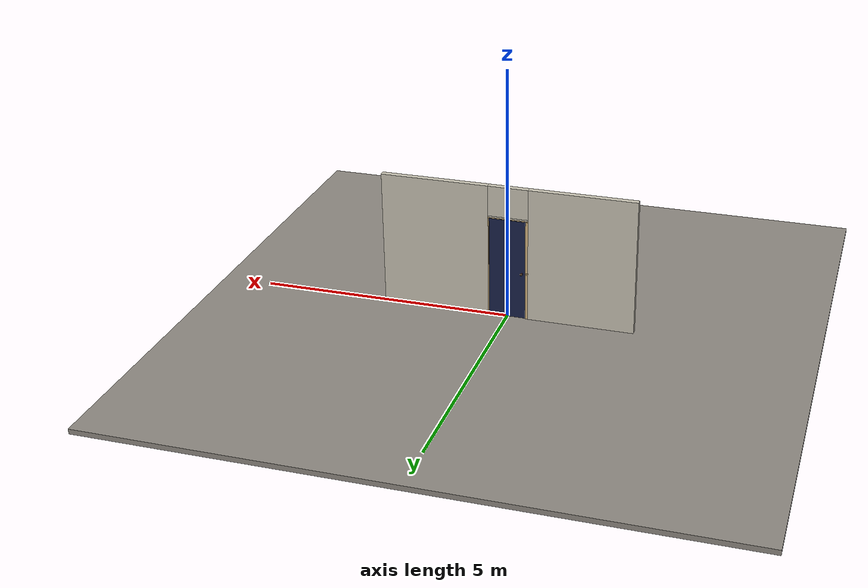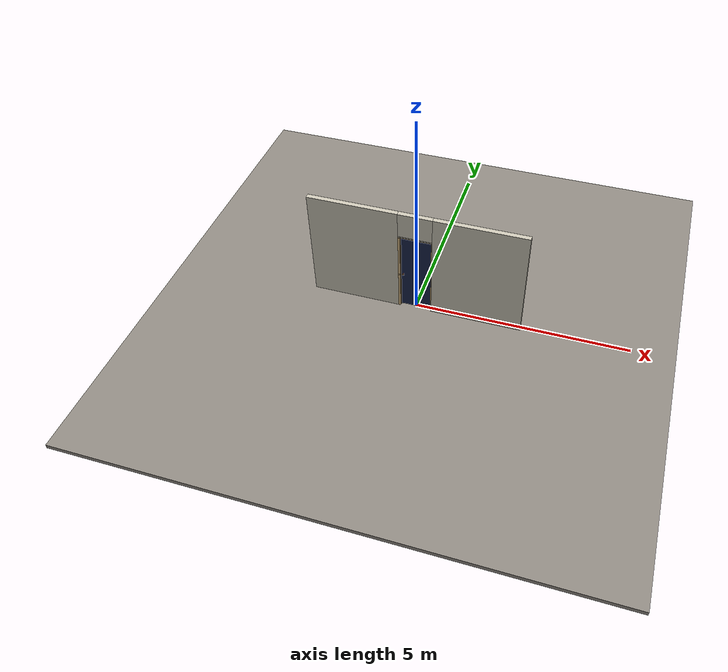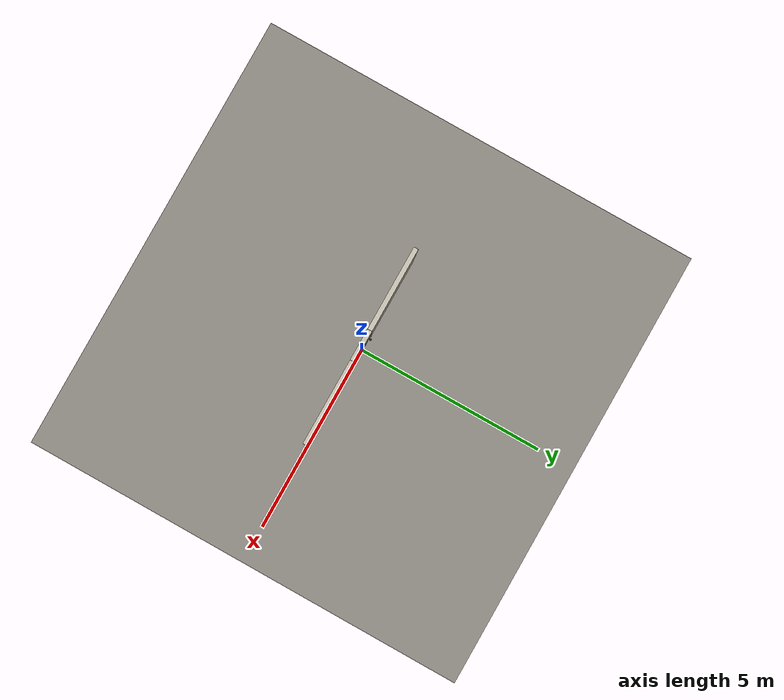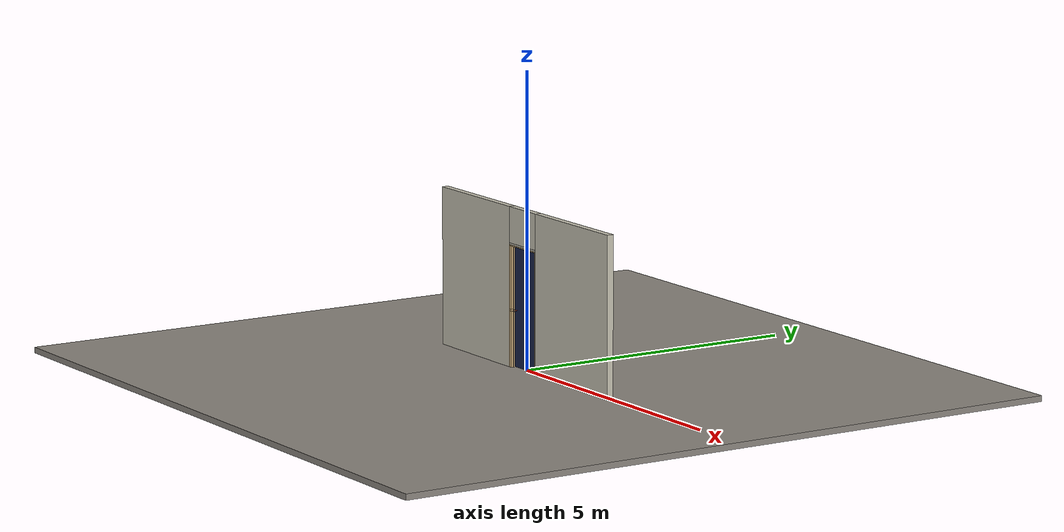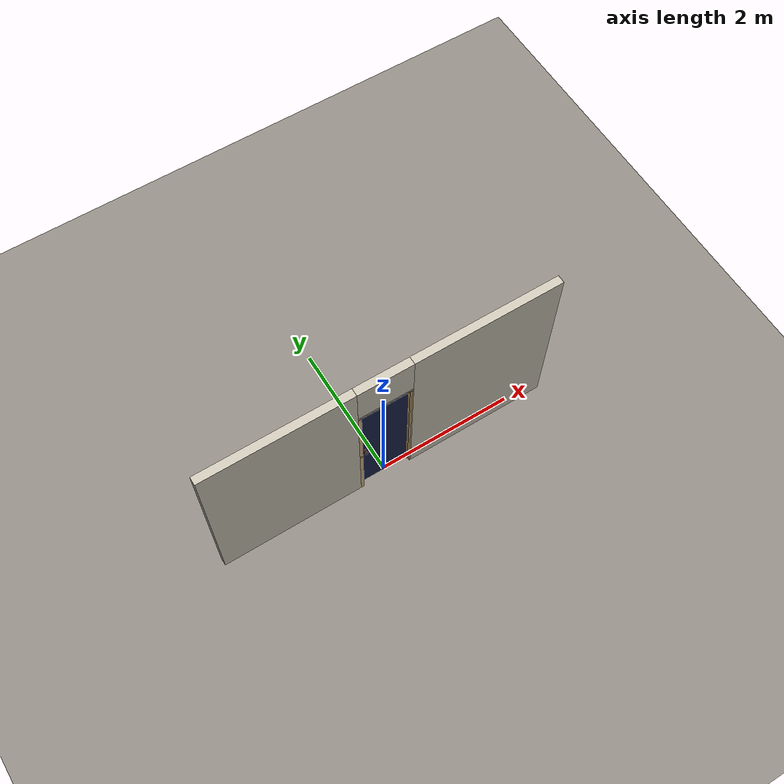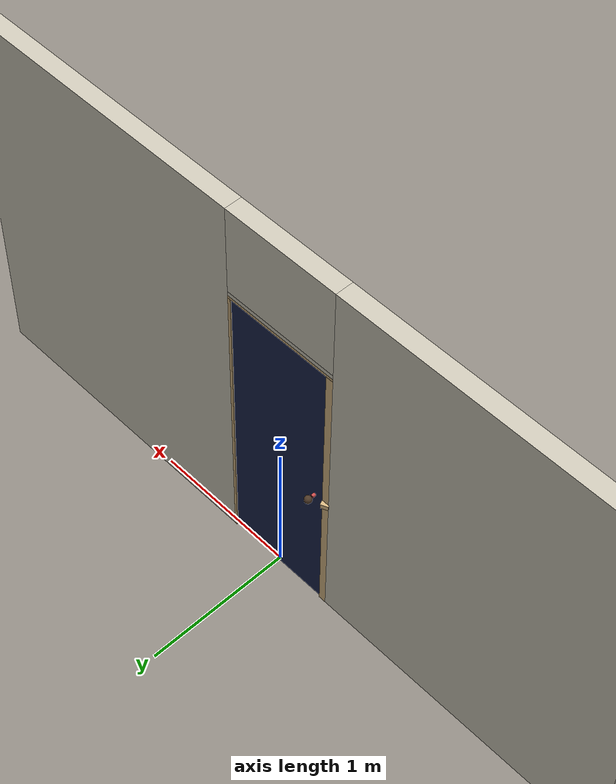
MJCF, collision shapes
<?xml version="1.0" ?>
<mujoco model="db0556_swing_single_simple">
  <compiler angle="radian" meshdir="../../hardware" texturedir="../../textures" autolimits="true" inertiafromgeom="false"/>
  <option timestep="0.002" integrator="implicitfast" cone="elliptic" impratio="10" noslip_iterations="3">
    <flag multiccd="enable"/>
  </option>
  <size memory="16M"/>
  <default>
    <geom condim="4" solref="0.005 1" solimp="0.95 0.99 0.001"/>
    <joint solreflimit="0.005 1" solimplimit="0.95 0.99 0.001"/>
    <tendon solreflimit="0.005 1"/>
    <equality solref="0.002 1"/>
  </default>
  <visual>
    <headlight ambient="0.4 0.4 0.4" diffuse="0.7 0.7 0.7" specular="0.2 0.2 0.2"/>
    <quality shadowsize="4096"/>
    <map znear="0.01" zfar="60"/>
  </visual>
  <asset>
    <mesh name="hinge_96510cf394" file="hinge_96510cf394.obj"/>
    <mesh name="hinge_jamb_7fd4ca52b2" file="hinge_jamb_7fd4ca52b2.obj"/>
    <mesh name="knob_0ebdbe0e4b" file="knob_0ebdbe0e4b.obj"/>
    <material name="mat_floor" rgba="0.55 0.53 0.5 1" specular="0.2" shininess="0.15" reflectance="0"/>
    <material name="mat_wall" rgba="0.78 0.76 0.7 1" specular="0.2" shininess="0.1" reflectance="0"/>
    <material name="mat_leaf" rgba="0.09 0.13 0.28 1" specular="0.2" shininess="0.38" reflectance="0"/>
    <material name="mat_leaf_louver" rgba="0.076 0.111 0.238 1" specular="0.2" shininess="0.4" reflectance="0"/>
    <material name="mat_hinge" rgba="0.65 0.66 0.68 1" specular="0.74" shininess="0.5" reflectance="0.36"/>
    <material name="mat_op_bronze" rgba="0.3 0.22 0.15 1" specular="0.74" shininess="0.5" reflectance="0.36"/>
    <material name="mat_trim" rgba="0.85 0.66 0.3 1" specular="0.8" shininess="0.75" reflectance="0.4"/>
    <material name="mat_bolt" rgba="0.85 0.66 0.3 1" specular="0.8" shininess="0.75" reflectance="0.4"/>
    <material name="mat_frame" rgba="0.82 0.7 0.5 1" specular="0.2" shininess="0.45" reflectance="0"/>
    <texture name="skybox" type="skybox" builtin="gradient" rgb1="0.6 0.7 0.85" rgb2="0.9 0.92 0.95" width="256" height="256"/>
  </asset>
  <worldbody>
    <light name="sun" pos="1.5 -2.5 4" dir="-0.3 0.5 -0.8" directional="true" diffuse="0.8 0.8 0.8" specular="0.3 0.3 0.3" castshadow="true"/>
    <light name="fill" pos="-1.5 2.5 3" dir="0.3 -0.5 -0.7" directional="true" diffuse="0.35 0.35 0.4" castshadow="false"/>
    <camera name="robot_view" pos="0 -2.575187 1.734312" xyaxes="1 0 0 0 0.26963 0.962964" fovy="52"/>
    <camera name="far_view" pos="0 2.509187 1.734312" xyaxes="-1 0 0 0 -0.26963 0.962964" fovy="52"/>
    <camera name="iso" pos="-1.932062 -2.168438 2.141063" xyaxes="0.741536 -0.670913 0 0.242917 0.268487 0.932151" fovy="46"/>
    <camera name="detail_handle" pos="-0.115 -0.8695 1.245" xyaxes="0.97561 0.219512 0 -0.070934 0.315262 0.94635" fovy="38"/>
    <geom name="floor" type="box" size="6 6 0.05" pos="0 0 -0.05" material="mat_floor" group="0" contype="1" conaffinity="1" friction="0.8 0.005 0.0001" density="2400"/>
    <geom name="wall_left" type="box" size="1.046 0.0575 1.35" pos="-1.454 -0.033 1.35" material="mat_wall" group="0" contype="1" conaffinity="1" friction="0.6 0.005 0.0001" density="800"/>
    <geom name="wall_right" type="box" size="1.061 0.0575 1.35" pos="1.439 -0.033 1.35" material="mat_wall" group="0" contype="1" conaffinity="1" friction="0.6 0.005 0.0001" density="800"/>
    <geom name="wall_header" type="box" size="0.393 0.0575 0.303" pos="-0.015 -0.033 2.397" material="mat_wall" group="0" contype="1" conaffinity="1" friction="0.6 0.005 0.0001" density="800"/>
    <geom name="hinge_0_jamb" type="mesh" mesh="hinge_jamb_7fd4ca52b2" pos="0.356 0.0245 0.259" quat="0 0 0 1" material="mat_hinge" group="1" contype="0" conaffinity="0" density="7850"/>
    <geom name="hinge_1_jamb" type="mesh" mesh="hinge_jamb_7fd4ca52b2" pos="0.356 0.0245 1.025" quat="0 0 0 1" material="mat_hinge" group="1" contype="0" conaffinity="0" density="7850"/>
    <geom name="hinge_2_jamb" type="mesh" mesh="hinge_jamb_7fd4ca52b2" pos="0.356 0.0245 1.861" quat="0 0 0 1" material="mat_hinge" group="1" contype="0" conaffinity="0" density="7850"/>
    <geom name="jamb_hinge" type="box" size="0.0095 0.0575 1.0225" pos="0.3685 -0.033 1.0225" material="mat_frame" group="0" contype="1" conaffinity="1" friction="0.6 0.005 0.0001" density="400"/>
    <geom name="strike_965_wall_n" type="box" size="0.0245 0.041325 0.0167" pos="-0.3835 -0.049175 0.965" material="mat_frame" group="0" contype="1" conaffinity="1" friction="0.6 0.005 0.0001" density="400"/>
    <geom name="strike_965_wall_p" type="box" size="0.0245 0.008 0.0167" pos="-0.3835 0.01585 0.965" material="mat_frame" group="0" contype="1" conaffinity="1" friction="0.6 0.005 0.0001" density="400"/>
    <geom name="strike_965_ramp" type="box" size="0.0245 0.01649 0.0167" pos="-0.388136 0.028673 0.965" quat="0.977148 0 0 0.212558" material="mat_frame" group="0" contype="1" conaffinity="1" friction="0.12 0.005 0.0001" density="400"/>
    <geom name="strike_965_back" type="box" size="0.01615 0.00785 0.0167" pos="-0.39185 0 0.965" material="mat_frame" group="0" contype="1" conaffinity="1" friction="0.6 0.005 0.0001" density="400"/>
    <geom name="jamb_strike_0" type="box" size="0.0245 0.0575 0.47415" pos="-0.3835 -0.033 0.47415" material="mat_frame" group="0" contype="1" conaffinity="1" friction="0.6 0.005 0.0001" density="400"/>
    <geom name="jamb_strike_1" type="box" size="0.0245 0.0575 0.53165" pos="-0.3835 -0.033 1.51335" material="mat_frame" group="0" contype="1" conaffinity="1" friction="0.6 0.005 0.0001" density="400"/>
    <geom name="jamb_head" type="box" size="0.393 0.0575 0.0095" pos="-0.015 -0.033 2.0545" material="mat_frame" group="0" contype="1" conaffinity="1" friction="0.6 0.005 0.0001" density="400"/>
    <geom name="head_stud" type="box" size="0.393 0.0575 0.015" pos="-0.015 -0.033 2.079" material="mat_wall" group="0" contype="1" conaffinity="1" friction="0.6 0.005 0.0001" density="500"/>
    <geom name="stop_hinge" type="box" size="0.0055 0.016 1.0225" pos="0.3535 -0.034 1.0225" material="mat_frame" group="0" contype="1" conaffinity="1" friction="0.6 0.005 0.0001" density="400"/>
    <geom name="stop_strike" type="box" size="0.0055 0.016 1.0225" pos="-0.3535 -0.034 1.0225" material="mat_frame" group="0" contype="1" conaffinity="1" friction="0.6 0.005 0.0001" density="400"/>
    <geom name="stop_head" type="box" size="0.359 0.016 0.0055" pos="0 -0.034 2.0395" material="mat_frame" group="0" contype="1" conaffinity="1" friction="0.6 0.005 0.0001" density="400"/>
    <site name="approach_point" pos="0 -1.5 0" quat="1 0 0 0" size="0.05" rgba="0.2 0.9 0.2 0.5" group="4"/>
    <site name="goal_point" pos="0 1.5 0" quat="1 0 0 0" size="0.05" rgba="0.2 0.9 0.2 0.5" group="4"/>
    <site name="door_plane_center" pos="0 0 1.0225" quat="1 0 0 0" size="0.02" rgba="0.2 0.9 0.2 0.5" group="4"/>
    <body name="leaf" pos="0.359 0 0">
      <inertial pos="-0.354814 0.000157 1.025229" mass="38.009651" quat="0.49976 0.500398 -0.499597 0.500245" diaginertia="1.640272948 13.112616959 14.744912506"/>
      <joint name="leaf_hinge" type="hinge" axis="0 0 -1" pos="-0.003 0.0245 0" limited="true" range="0 2.094395" damping="0.143782" frictionloss="0.975831" armature="0.02"/>
      <geom name="leaf_slab" type="box" size="0.3555 0.0175 1.016" pos="-0.3585 0 1.025" material="mat_leaf" group="0" contype="1" conaffinity="1" friction="0.4 0.005 0.0001" density="1"/>
      <geom name="hinge_0" type="mesh" mesh="hinge_96510cf394" pos="-0.003 0.0245 0.259" quat="0 0 0 1" material="mat_hinge" group="1" contype="0" conaffinity="0" density="7850"/>
      <geom name="hinge_1" type="mesh" mesh="hinge_96510cf394" pos="-0.003 0.0245 1.025" quat="0 0 0 1" material="mat_hinge" group="1" contype="0" conaffinity="0" density="7850"/>
      <geom name="hinge_2" type="mesh" mesh="hinge_96510cf394" pos="-0.003 0.0245 1.861" quat="0 0 0 1" material="mat_hinge" group="1" contype="0" conaffinity="0" density="7850"/>
      <geom name="leaf_latch_bolt_faceplate" type="box" size="0.0006 0.01235 0.0267" pos="-0.7134 0 0.965" material="mat_bolt" group="1" contype="0" conaffinity="0" density="8500"/>
      <site name="leaf_edge_mid" pos="-0.714 0 1.016" quat="1 0 0 0" size="0.02" rgba="0.2 0.9 0.2 0.5" group="4"/>
      <body name="leaf_handle" pos="-0.654 0 0.965">
        <inertial pos="0 0 0" mass="1.168392" quat="0.5 0.5 0.5 0.5" diaginertia="0.000320333 0.00482576 0.00482576"/>
        <joint name="leaf_handle_hinge" type="hinge" axis="0 1 0" limited="true" range="0 0.87" damping="0.143674" frictionloss="0.039" stiffness="0.5" springref="-0.5" armature="0.01"/>
        <geom name="leaf_handle_knob_n" type="mesh" mesh="knob_0ebdbe0e4b" pos="0 -0.0175 0" quat="0 0 -0.707107 0.707107" material="mat_op_bronze" group="1" contype="0" conaffinity="0" density="3000"/>
        <geom name="leaf_handle_knob_col_n" type="sphere" size="0.0252" pos="0 -0.0695 0" material="mat_op_bronze" group="0" contype="1" conaffinity="1" friction="0.9 0.01 0.0001" density="3000"/>
        <geom name="leaf_handle_knob_neck_n" type="cylinder" size="0.011 0.012" pos="0 -0.0295 0" quat="0.707107 -0.707107 0 0" material="mat_op_bronze" group="3" contype="1" conaffinity="1" rgba="0.8 0.3 0.3 0.25" friction="0.6 0.005 0.0001" density="3000"/>
        <geom name="leaf_handle_knob_p" type="mesh" mesh="knob_0ebdbe0e4b" pos="0 0.0175 0" quat="0 0 0.707107 0.707107" material="mat_op_bronze" group="1" contype="0" conaffinity="0" density="3000"/>
        <geom name="leaf_handle_knob_col_p" type="sphere" size="0.0252" pos="0 0.0695 0" material="mat_op_bronze" group="0" contype="1" conaffinity="1" friction="0.9 0.01 0.0001" density="3000"/>
        <geom name="leaf_handle_knob_neck_p" type="cylinder" size="0.011 0.012" pos="0 0.0295 0" quat="0.707107 -0.707107 0 0" material="mat_op_bronze" group="3" contype="1" conaffinity="1" rgba="0.8 0.3 0.3 0.25" friction="0.6 0.005 0.0001" density="3000"/>
        <site name="leaf_handle_grip_n" pos="0 -0.0695 0" quat="1 0 0 0" size="0.012" rgba="0.2 0.9 0.2 0.5" group="4"/>
        <site name="leaf_handle_grip_p" pos="0 0.0695 0" quat="1 0 0 0" size="0.012" rgba="0.2 0.9 0.2 0.5" group="4"/>
      </body>
      <body name="leaf_latch_bolt" pos="-0.714 0 0.965">
        <inertial pos="0.00865 0 0" mass="0.041419" quat="0.92388 0.382683 0 0" diaginertia="0.000000798 0.000005598 0.000005598"/>
        <joint name="leaf_latch_bolt_slide" type="slide" axis="1 0 0" limited="true" range="0 0.0127" damping="2" frictionloss="0.3" stiffness="300" springref="-0.008333" armature="0.1"/>
        <geom name="leaf_latch_bolt_capsule" type="capsule" size="0.00635 0.015" pos="0.00865 0 0" quat="0.707107 0 -0.707107 0" material="mat_bolt" group="0" contype="1" conaffinity="1" friction="0.2 0.005 0.0001" density="8500"/>
      </body>
    </body>
  </worldbody>
  <tendon>
    <fixed name="leaf_latch_bolt_coupling" limited="true" range="0 10">
      <joint joint="leaf_latch_bolt_slide" coef="1"/>
      <joint joint="leaf_handle_hinge" coef="-0.015679"/>
    </fixed>
  </tendon>
  <sensor>
    <jointpos name="leaf_hinge_pos" joint="leaf_hinge"/>
    <jointvel name="leaf_hinge_vel" joint="leaf_hinge"/>
    <jointpos name="leaf_handle_hinge_pos" joint="leaf_handle_hinge"/>
    <jointvel name="leaf_handle_hinge_vel" joint="leaf_handle_hinge"/>
    <jointpos name="leaf_latch_bolt_slide_pos" joint="leaf_latch_bolt_slide"/>
    <jointvel name="leaf_latch_bolt_slide_vel" joint="leaf_latch_bolt_slide"/>
  </sensor>
</mujoco>
